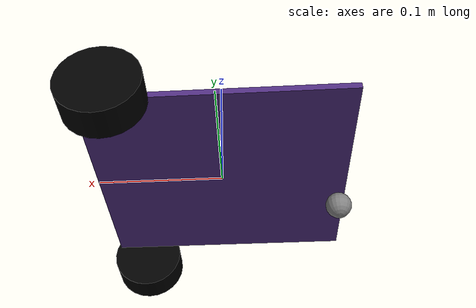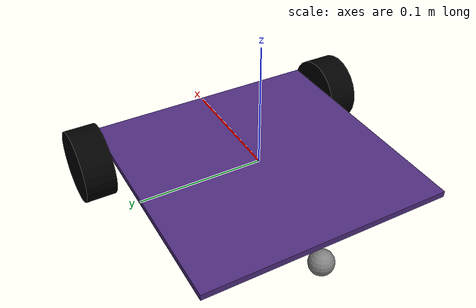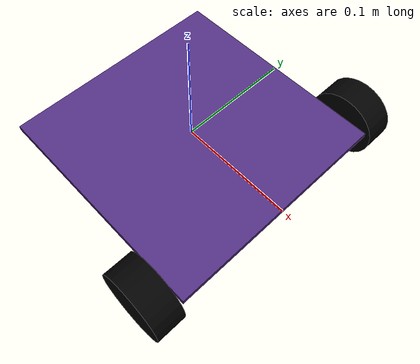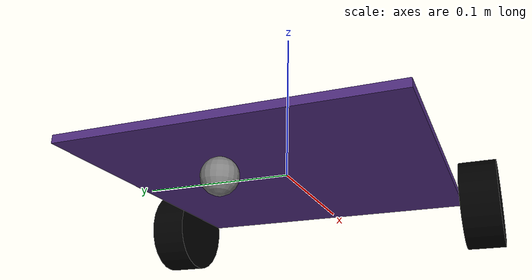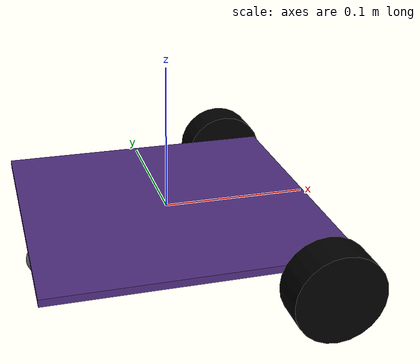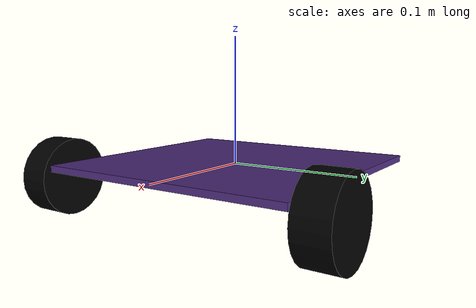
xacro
<?xml version="1.0"?>
<robot xmlns:xacro="http://www.ros.org/wiki/xacro" >

    <xacro:include filename="materials.xacro" />
    <xacro:include filename="inertial.xacro" />

    <!-- Constants -->
    <xacro:property name="PI" value="3.14159265359" />

    <xacro:property name="BASE_X" value="0.2" />
    <xacro:property name="BASE_Y" value="0.2" />
    <xacro:property name="BASE_Z" value="0.005" />
    <xacro:property name="BASE_M" value="2" />

    <xacro:property name="CASTER_OFF_X" value="-0.09" />
    <xacro:property name="CASTER_OFF_Z" value="-0.03" />
    <xacro:property name="CASTER_R" value="0.01" />
    <xacro:property name="CASTER_M" value="0.1" />

    <xacro:property name="WHEEL_OFF_X" value="0.075" />
    <xacro:property name="WHEEL_OFF_Y" value="0.115" />
    <xacro:property name="WHEEL_OFF_Z" value="-0.01" />
    <xacro:property name="WHEEL_L" value="0.025" />
    <xacro:property name="WHEEL_R" value="0.03" />
    <xacro:property name="WHEEL_M" value="0.05" />

    <!-- Macros -->
    <xacro:macro name="Wheel" params="prefix y_reflect">
        <joint name="${prefix}_wheel_joint" type="continuous">
            <parent link="base_link" />
            <child link="${prefix}_wheel_link" />
            <origin xyz="${WHEEL_OFF_X} ${y_reflect*WHEEL_OFF_Y} ${WHEEL_OFF_Z}" rpy="${-PI/2} 0 0" />
            <axis xyz="0 0 1" />
        </joint>

        <link name="${prefix}_wheel_link">
            <visual>
                <geometry>
                    <cylinder radius="${WHEEL_R}" length="${WHEEL_L}" />
                </geometry>
                <material name="black" />
            </visual>

            <collision>
                <geometry>
                    <cylinder radius="${WHEEL_R}" length="${WHEEL_L}" />
                </geometry>
            </collision>

            <xacro:CylinderInertial m="${WHEEL_M}" r="${WHEEL_R}" l="${WHEEL_L}" />
        </link>
        <gazebo reference="${prefix}_wheel_link">
            <material>Gazebo/Black</material>
        </gazebo>
    </xacro:macro>

    <!-- Start Modelling -->
    <link name="base_link">
        <visual>
            <geometry>
                <box size="${BASE_X} ${BASE_Y} ${BASE_Z}"/>
            </geometry>
            <material name="purple"/>
        </visual>

        <collision>
            <geometry>
                <box size="${BASE_X} ${BASE_Y} ${BASE_Z}"/>
            </geometry>
        </collision>

        <xacro:BoxInertial m="${BASE_M}" x="${BASE_X}" y="${BASE_Y}" z="${BASE_Z}" />
    </link>
    <gazebo reference="base_link">
        <material>Gazebo/Purple</material>
    </gazebo>

    <joint name="base_joint" type="fixed">
        <parent link="base_link"/>
        <child link="base_footprint"/>
        <origin xyz="0.0 0.0 ${WHEEL_OFF_Z-WHEEL_R}" />
    </joint>

    <link name="base_footprint"/>

    <joint name="caster_joint" type="fixed">
        <parent link="base_link"/>
        <child link="caster"/>
        <origin xyz="${CASTER_OFF_X} 0 ${CASTER_OFF_Z}"/>
    </joint>

    <link name="caster">
        <visual>
            <geometry>
                <sphere radius="${CASTER_R}"/>
            </geometry>
            <material name="gray"/>
        </visual>

        <collision>
            <geometry>
                <sphere radius="${CASTER_R}"/>
            </geometry>
        </collision>

        <xacro:SphereInertial m="${CASTER_M}" r="${CASTER_R}" />
    </link>
    <gazebo reference="caster">
        <mu1>0.0001</mu1>
        <mu2>0.0001</mu2>
        <material>Gazebo/Gray</material>
    </gazebo>

    <xacro:Wheel prefix="left" y_reflect="1" />
    <xacro:Wheel prefix="right" y_reflect="-1" />

</robot>

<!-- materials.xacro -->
<robot xmlns:xacro="http://www.ros.org/wiki/xacro" >

    <material name="black">
        <color rgba="0 0 0 1" />
    </material>

    <material name="white">
        <color rgba="1 1 1 1" />
    </material>

    <material name="purple">
        <color rgba="0.3098 0.1765 0.4980 1" />
    </material>

    <material name="orange">
        <color rgba="1 0.6471 0 1" />
    </material>

    <material name="navy">
        <color rgba="0 0 0.5 1" />
    </material>

    <material name="blue">
        <color rgba="0 0 1 1" />
    </material>

    <material name="green">
        <color rgba="0 1 0 1" />
    </material>

    <material name="gray">
        <color rgba="0.5 0.5 0.5 1" />
    </material>

</robot>

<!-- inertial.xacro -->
<robot xmlns:xacro="http://www.ros.org/wiki/xacro" >

    <xacro:macro name="BoxInertial" params="m x y z">
        <inertial>
            <mass value="${m}" />
            <inertia ixx="${(m/12) * (z*z + y*y)}" ixy="0.0" ixz="0.0" iyy="${(m/12) * (x*x + z*z)}" iyz="0.0" izz="${(m/12) * (y*y + x*x)}" />
        </inertial>
    </xacro:macro>

    <xacro:macro name="CylinderInertial" params="m r l">
        <inertial>
            <mass value="${m}" />
            <inertia ixx="${(m/12) * (3*r*r + l*l)}" ixy="0" ixz="0" iyy="${(m/12) * (3*r*r + l*l)}" iyz="0" izz="${(m/2) * (r*r)}" />
        </inertial>
    </xacro:macro>

    <xacro:macro name="SphereInertial" params="m r">
        <inertial>
            <mass value="${m}" />
            <inertia ixx="${(2/5) * m * (r*r)}" ixy="0.0" ixz="0.0" iyy="${(2/5) * m * (r*r)}" iyz="0.0" izz="${(2/5) * m * (r*r)}" />
        </inertial>
    </xacro:macro>

</robot>
